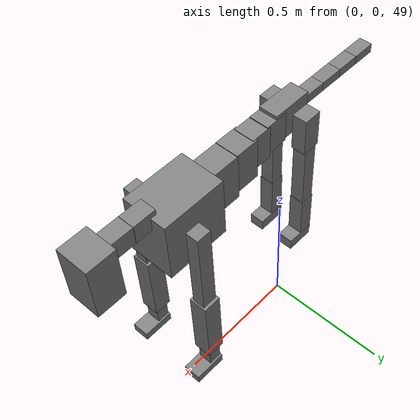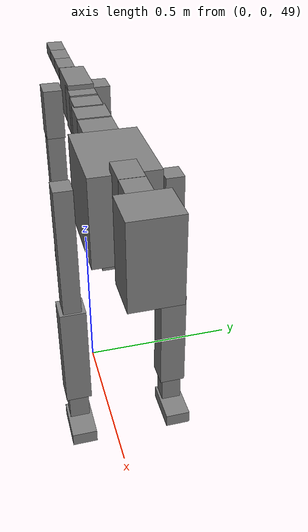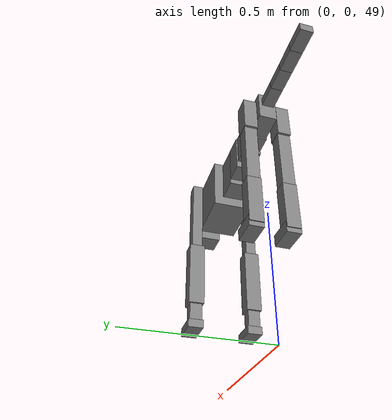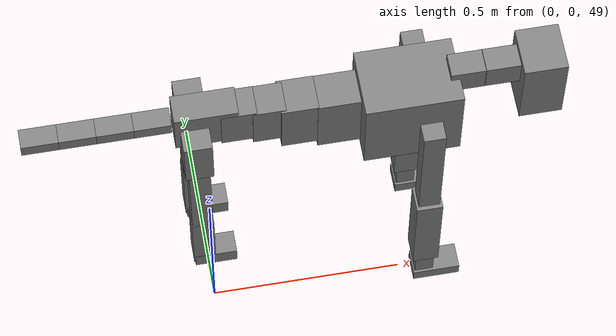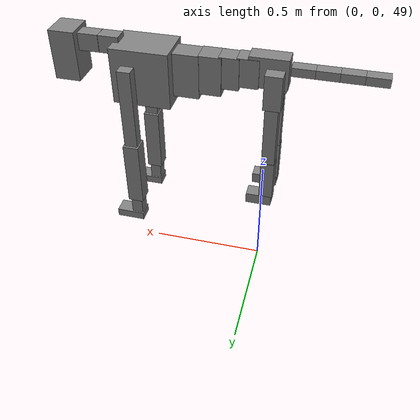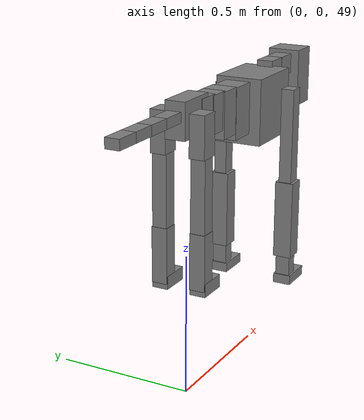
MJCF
<mujoco model="dog">

    <default>
        <joint armature="0.02" stiffness="1" damping="0.2" limited="true"/>
        <geom condim="3" friction="1 0.05 0.05" margin="0.01"/>
        <motor ctrllimited="true" ctrlrange="-1.0 1.0" forcelimited="true" gear="50"/>
    </default>

    <compiler inertiafromgeom="true" angle="radian"/>

    <option timestep="0.016" iterations="50" tolerance="1e-10" solver="Newton" jacobian="dense" cone="pyramidal"/>

    <size nconmax="20000" njmax="60000" nstack="5000000"/>
    <visual>
        <map force="0.1" zfar="30"/>
        <rgba haze="0.15 0.25 0.35 1"/>
        <quality shadowsize="2048"/>
        <global offwidth="800" offheight="800"/>
    </visual>

    <asset>
        <texture type="skybox" builtin="gradient" rgb1="0.3 0.5 0.7" rgb2="0 0 0" width="512" height="512"/>
        <texture name="texplane" type="2d" builtin="checker" rgb1=".2 .3 .4" rgb2=".1 0.15 0.2" width="512" height="512"
                 mark="cross" markrgb=".8 .8 .8"/>
        <texture name="texgeom" type="cube" builtin="flat" mark="cross" width="127" height="1278" rgb1="0.8 0.6 0.4"
                 rgb2="0.8 0.6 0.4" markrgb="1 1 1" random="0.01"/>

        <material name="matplane" reflectance="0.3" texture="texplane" texrepeat="1 1" texuniform="true"/>
        <material name="matgeom" texture="texgeom" texuniform="true" rgba="0.8 0.6 .4 1"/>
    </asset>

    <worldbody>
        <geom name="floor" pos="0 0 0" size="0 0 .25" type="plane" material="matplane" condim="3"/>

        <light directional="false" diffuse=".2 .2 .2" specular="0 0 0" pos="0 0 5" dir="0 0 -1" castshadow="false"/>
        <light mode="targetbodycom" target="torso" directional="false" diffuse=".8 .8 .8" specular="0.3 0.3 0.3"
               pos="0 0 4.0" dir="0 0 -1"/>

        <body name="root" pos="0 0 50">
            <freejoint name="root_1"/>
            <geom type="box" pos="0 0 -0.02" size="0.0774  0.0358  0.063" density="2030"/>

            <body name="spine1" pos="0.054 0 0">
                <joint name="spine1_y" axis="0 1 0" range="0 0.7" limited="true"/>
                <geom type="box" pos="0.02375 0 -0.03" size="0.04375  0.0375  0.05985" density="2030"/>

                <body name="spine2" pos="0.0612 0 0">
                    <joint name="spine2_y" axis="0 1 0" range="-0.15 0.15" limited="true"/>
                    <geom type="box" pos="0.03555  0  -0.04" size="0.04055  0.039  0.06615" density="2030"/>

                    <body name="spine3" pos="0.0730 0 0">
                        <joint name="spine3_y" axis="0 1 0" range="-0.15 0.15" limited="true"/>
                        <geom type="box" pos="0.03555  0  -0.057" size="0.04555  0.0445  0.081" density="2030"/>

                        <body name="spine4" pos="0.0780 0 0">
                            <joint name="spine4_y" axis="0 1 0" range="-0.15 0.15" limited="true"/>
                            <geom type="box" pos="0.05265  0  -0.07" size="0.05265  0.045  0.09135" density="2030"/>

                            <body name="torso" pos="0.1082 0 0">
                                <joint name="torso_y" axis="0 1 0" range="-0.15 0.15" limited="true"/>
                                <geom type="box" pos="0.11925  0  -0.085" size="0.11925  0.085  0.11745"
                                      density="2030"/>

                                <body name="neck1" pos="0.2160  0   0.0180">
                                    <joint name="neck1_y" axis="0 1 0" range="-1.2  -1" limited="true"/>
                                    <geom type="box" pos="0.0423  0  0" size="0.0423  0.03  0.036" density="2325"/>

                                    <body name="neck2" pos="0.0853  0  0">
                                        <joint name="neck2_y" axis="0 1 0" range="0.1  0" limited="true"/>
                                        <geom type="box" pos="0.0423  0  0" size="0.0423  0.03  0.036" density="2325"/>

                                        <body name="head" pos="0.0853  0  0">
                                            <joint name="head_y" axis="0 1 0" range="-0.3  -0.2" limited="true"/>
                                            <geom type="box" pos="0.0531  0  -0.055" size="0.0531  0.06  0.1044"
                                                  density="4030"/>

                                        </body>
                                    </body>
                                </body>

                                <body name="front_shoulder" pos="0.156  0   -0.0480">
                                    <joint name="front_shoulder_y" axis="0 1 0" range="-1 1.5" limited="true"/>
                                    <geom type="box" pos="0 0.13 -0.1575" size="0.0270  0.0231  0.1841" density="1158"/>
                                    <geom type="box" pos="0 -0.13 -0.1575" size="0.0270  0.0231  0.1841"
                                          density="1158"/>

                                    <body name="front_elbow" pos="0  0  -0.3149">
                                        <joint name="front_elbow_y" axis="0 1 0" range="-2 0" limited="true"/>
                                        <geom type="box" pos="0 0.13 -0.1422" size="0.0328  0.0335  0.1422"
                                              density="1081"/>
                                        <geom type="box" pos="0 -0.13 -0.1422" size="0.0328  0.0335  0.1422"
                                              density="1081"/>

                                        <body name="front_wrist" pos="0  0  -0.2845">
                                            <joint name="front_wrist_y" axis="0 1 0" range="-0.2 0" limited="true"/>
                                            <geom type="box" pos="0 0.13 -0.0438" size="0.0236  0.0262  0.0570"
                                                  density="1664"/>
                                            <geom type="box" pos="0 -0.13 -0.0438" size="0.0236  0.0262  0.0570"
                                                  density="1664"/>

                                            <body name="front_finger_end" pos="0  0  -0.0877">
                                                <joint name="front_finger_y" axis="0 1 0" range="-0.4 1"
                                                       limited="true"/>
                                                <geom type="box" pos="0.0325  0.13  -0.0027"
                                                      size="0.0596  0.0325  0.0177" density="1515"/>
                                                <geom type="box" pos="0.0325  -0.13  -0.0027"
                                                      size="0.0596  0.0325  0.0177" density="1515"/>

                                            </body>

                                        </body>
                                    </body>
                                </body>

                            </body>
                        </body>
                    </body>
                </body>
            </body>

            <body name="back_hip" pos="-0.03 0 -0.018">
                <joint name="back_hip_y" axis="0 1 0" range="-1.5 0.3" limited="true"/>
                <geom type="box" pos="0 0.07 -0.0496" size="0.0346  0.0272  0.0724" density="1154"/>
                <geom type="box" pos="0 -0.07 -0.0496" size="0.0346  0.0272  0.0724" density="1154"/>

                <body name="back_knee" pos="0  0  -0.0993">
                    <joint name="back_knee_y" axis="0 1 0" range="0 2.8" limited="true"/>
                    <geom type="box" pos="0 0.07 -0.1426" size="0.0261  0.0257  0.1581" density="1227"/>
                    <geom type="box" pos="0 -0.07 -0.1426" size="0.0261  0.0257  0.1581" density="1227"/>

                    <body name="back_ankle" pos="0  0  -0.2852">
                        <joint name="back_ankle_y" axis="0 1 0" range="-2.2 0" limited="true"/>
                        <geom type="box" pos="0 0.07 -0.0866" size="0.0278  0.0278  0.0978" density="1284"/>
                        <geom type="box" pos="0 -0.07 -0.0866" size="0.0278  0.0278  0.0978" density="1284"/>

                        <body name="back_toe_end" pos="0  0  -0.1732">
                            <joint name="back_toe_y" axis="0 1 0" range="-0.4 1" limited="true"/>
                            <geom type="box" pos="0.0288  0.07  -0.0078" size="0.0529  0.0288  0.0228" density="1515"/>
                            <geom type="box" pos="0.0288  -0.07  -0.0078" size="0.0529  0.0288  0.0228" density="1515"/>

                        </body>
                    </body>
                </body>
            </body>

            <body name="tail1" pos="-0.074 0 -0.006">
                <joint name="tail1_y" axis="0 1 0" range="-0.2 0.2" limited="true"/>
                <geom type="box" pos="-0.0536  0  0" size="0.045  0.025  0.0175" density="1587"/>

                <body name="tail2" pos="-0.09 0 0">
                    <joint name="tail2_y" axis="0 1 0" range="-0.2 0.2" limited="true"/>
                    <geom type="box" pos="-0.0536  0  0" size="0.045  0.025  0.0175" density="1587"/>

                    <body name="tail3" pos="-0.09 0 0">
                        <joint name="tail3_y" axis="0 1 0" range="-0.2 0.2" limited="true"/>
                        <geom type="box" pos="-0.0536  0  0" size="0.045  0.025  0.0175" density="1587"/>

                        <body name="tail4" pos="-0.09 0 0">
                            <joint name="tail4_y" axis="0 1 0" range="-0.2 0.2" limited="true"/>
                            <geom type="box" pos="-0.0536  0  0" size="0.045  0.025  0.0175" density="1587"/>

                        </body>
                    </body>
                </body>
            </body>
        </body>
    </worldbody>

    <actuator>
        <motor joint="spine1_y" forcerange="-150 150     "/>
        <motor joint="spine2_y" forcerange="-150 150     "/>
        <motor joint="spine3_y" forcerange="-150 150     "/>
        <motor joint="spine4_y" forcerange="-150 150     "/>
        <motor joint="torso_y" forcerange="-150 150     "/>
        <motor joint="neck1_y" forcerange="-100 100       "/>
        <motor joint="neck2_y" forcerange="-100 100       "/>
        <motor joint="head_y" forcerange="-150 150       "/>
        <motor joint="front_shoulder_y" forcerange="-131.80 122.24"/>
        <motor joint="front_elbow_y" forcerange="-170.36 173.16"/>
        <motor joint="front_wrist_y" forcerange="-76.19 133.64"/>
        <motor joint="front_finger_y" forcerange="-59.63 73.77"/>
        <motor joint="back_hip_y" forcerange="-359.10 203.23"/>
        <motor joint="back_knee_y" forcerange="-345.89 228.41"/>
        <motor joint="back_angle_y" forcerange="-127.56 216.95"/>
        <motor joint="back_toe_y" forcerange="-79.24 71.41"/>
        <motor joint="tail1_y" forcerange="-50 50     "/>
        <motor joint="tail2_y" forcerange="-50 50     "/>
        <motor joint="tail3_y" forcerange="-50 50     "/>
        <motor joint="tail4_y" forcerange="-50 50     "/>
    </actuator>
</mujoco>
